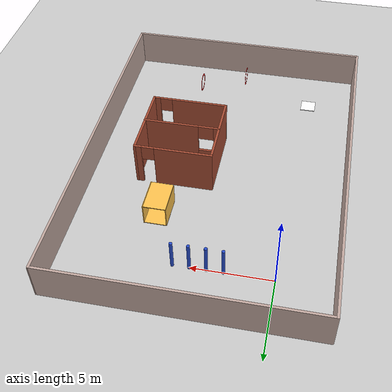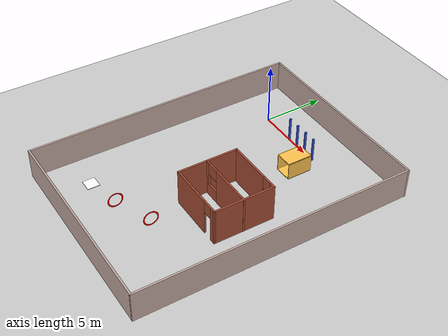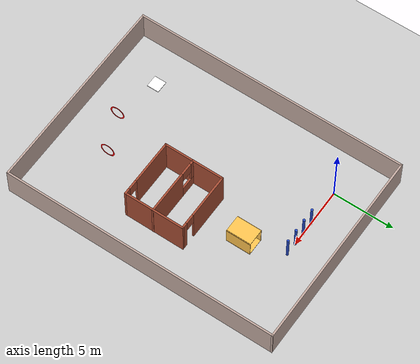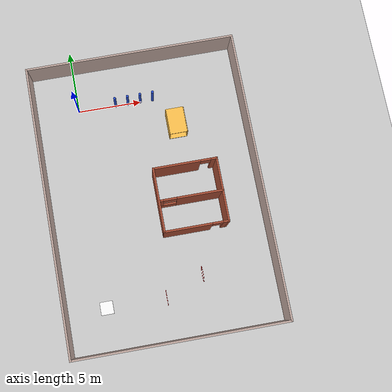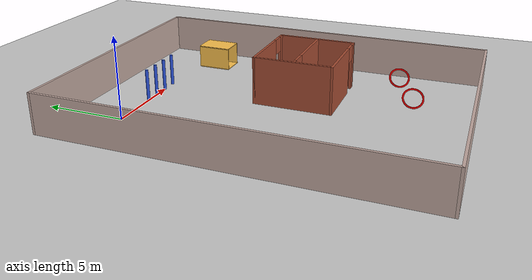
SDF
<sdf version="1.7">
 <world name="default">
  <light name="sun" type="directional">
   <pose>0 0 10 0 -0 0</pose>
   <diffuse>0.8 0.8 0.8 1</diffuse>
   <specular>0.2 0.2 0.2 1</specular>
   <attenuation>
    <range>1000</range>
    <constant>0.9</constant>
    <linear>0.01</linear>
    <quadratic>0.001</quadratic>
   </attenuation>
   <direction>-0.5 0.1 -0.9</direction>
   <spot><inner_angle>0</inner_angle><outer_angle>0</outer_angle><falloff>0</falloff></spot>
  </light>
  <model name="ground_plane">
   <static>1</static>
   <link name="link">
    <collision name="collision">
     <geometry><plane><normal>0 0 1</normal><size>100 100</size></plane></geometry>
     <surface>
      <contact><collide_bitmask>65535</collide_bitmask></contact>
      <friction><ode><mu>100</mu><mu2>50</mu2></ode></friction>
     </surface>
    </collision>
    <visual name="visual">
     <cast_shadows>0</cast_shadows>
     <geometry><plane><normal>0 0 1</normal><size>100 100</size></plane></geometry>
     <material>
      <script><uri>file://media/materials/scripts/gazebo.material</uri><name>Gazebo/Grey</name></script>
     </material>
    </visual>
   </link>
  </model>
  <model name="asphalt_plane">
   <pose>2.32989 -0.241228 -4.56907 0 -0 0</pose>
   <static>1</static>
   <link name="link">
    <collision name="collision"><geometry><box><size>200 200 0.1</size></box></geometry></collision>
    <visual name="visual">
     <cast_shadows>0</cast_shadows>
     <geometry><box><size>200 200 0.1</size></box></geometry>
     <material>
      <script>
       <uri>model://asphalt_plane/materials/scripts</uri>
       <uri>model://asphalt_plane/materials/textures</uri>
       <name>vrc/asphalt</name>
      </script>
     </material>
    </visual>
   </link>
  </model>
  <physics name="default_physics" default="0" type="ode">
   <ode>
    <solver>
     <type>quick</type>
     <iters>10</iters>
     <sor>1.3</sor>
     <use_dynamic_moi_rescaling>0</use_dynamic_moi_rescaling>
    </solver>
    <constraints>
     <cfm>0</cfm>
     <erp>0.2</erp>
     <contact_max_correcting_vel>100</contact_max_correcting_vel>
     <contact_surface_layer>0.001</contact_surface_layer>
    </constraints>
   </ode>
   <max_step_size>0.004</max_step_size>
   <real_time_factor>1</real_time_factor>
   <real_time_update_rate>250</real_time_update_rate>
  </physics>
  <gravity>0 0 -9.8066</gravity>
  <magnetic_field>6e-06 2.3e-05 -4.2e-05</magnetic_field>
  <atmosphere type="adiabatic"/>
  <scene><ambient>0.4 0.4 0.4 1</ambient><background>0.7 0.7 0.7 1</background><shadows>1</shadows></scene>
  <spherical_coordinates>
   <surface_model>EARTH_WGS84</surface_model>
   <latitude_deg>0</latitude_deg>
   <longitude_deg>0</longitude_deg>
   <elevation>0</elevation>
   <heading_deg>0</heading_deg>
  </spherical_coordinates>
  <model name="labyrinth">
   <pose>8.01567 -8.71442 0 0 0 -1.57071</pose>
   <link name="Wall_11">
    <pose>0.075 -0.6275 0 0 -0 -1.5708</pose>
    <visual name="Wall_11_Visual_0">
     <pose>-0.7025 0 1.5 0 -0 0</pose>
     <geometry><box><size>3.595 0.15 3</size></box></geometry>
     <material>
      <script><uri>file://media/materials/scripts/gazebo.material</uri><name>Gazebo/Bricks</name></script>
      <ambient>1 1 1 1</ambient>
     </material>
     <meta><layer>0</layer></meta>
    </visual>
    <collision name="Wall_11_Collision_0">
     <geometry><box><size>3.595 0.15 3</size></box></geometry>
     <pose>-0.7025 0 1.5 0 -0 0</pose>
    </collision>
    <visual name="Wall_11_Visual_1">
     <pose>1.7975 0 0.5 0 -0 0</pose>
     <geometry><box><size>1.405 0.15 1</size></box></geometry>
     <material>
      <script><uri>file://media/materials/scripts/gazebo.material</uri><name>Gazebo/Bricks</name></script>
      <ambient>1 1 1 1</ambient>
     </material>
     <meta><layer>0</layer></meta>
    </visual>
    <collision name="Wall_11_Collision_1">
     <geometry><box><size>1.405 0.15 1</size></box></geometry>
     <pose>1.7975 0 0.5 0 -0 0</pose>
    </collision>
    <visual name="Wall_11_Visual_2">
     <pose>2.2975 0 2 0 -0 0</pose>
     <geometry><box><size>0.405 0.15 2</size></box></geometry>
     <material>
      <script><uri>file://media/materials/scripts/gazebo.material</uri><name>Gazebo/Bricks</name></script>
      <ambient>1 1 1 1</ambient>
     </material>
     <meta><layer>0</layer></meta>
    </visual>
    <collision name="Wall_11_Collision_2">
     <geometry><box><size>0.405 0.15 2</size></box></geometry>
     <pose>2.2975 0 2 0 -0 0</pose>
    </collision>
    <visual name="Wall_11_Visual_3">
     <pose>1.595 0 2.5 0 -0 0</pose>
     <geometry><box><size>1 0.15 1</size></box></geometry>
     <material>
      <script><uri>file://media/materials/scripts/gazebo.material</uri><name>Gazebo/Bricks</name></script>
      <ambient>1 1 1 1</ambient>
     </material>
     <meta><layer>0</layer></meta>
    </visual>
    <collision name="Wall_11_Collision_3">
     <geometry><box><size>1 0.15 1</size></box></geometry>
     <pose>1.595 0 2.5 0 -0 0</pose>
    </collision>
   </link>
   <link name="Wall_6">
    <pose>-2.425 -0.6475 0 0 -0 -1.5708</pose>
    <visual name="Wall_6_Visual_0">
     <pose>-2.2475 0 1.5 0 -0 0</pose>
     <geometry><box><size>0.505 0.15 3</size></box></geometry>
     <material>
      <script><uri>file://media/materials/scripts/gazebo.material</uri><name>Gazebo/Bricks</name></script>
      <ambient>1 1 1 1</ambient>
     </material>
     <meta><layer>0</layer></meta>
    </visual>
    <collision name="Wall_6_Collision_0">
     <geometry><box><size>0.505 0.15 3</size></box></geometry>
     <pose>-2.2475 0 1.5 0 -0 0</pose>
    </collision>
    <visual name="Wall_6_Visual_1">
     <pose>0.6525 0 1.5 0 -0 0</pose>
     <geometry><box><size>3.695 0.15 3</size></box></geometry>
     <material>
      <script><uri>file://media/materials/scripts/gazebo.material</uri><name>Gazebo/Bricks</name></script>
      <ambient>1 1 1 1</ambient>
     </material>
     <meta><layer>0</layer></meta>
    </visual>
    <collision name="Wall_6_Collision_1">
     <geometry><box><size>3.695 0.15 3</size></box></geometry>
     <pose>0.6525 0 1.5 0 -0 0</pose>
    </collision>
    <visual name="Wall_6_Visual_2">
     <pose>-1.595 0 2.5 0 -0 0</pose>
     <geometry><box><size>0.8 0.15 1</size></box></geometry>
     <material>
      <script><uri>file://media/materials/scripts/gazebo.material</uri><name>Gazebo/Bricks</name></script>
      <ambient>1 1 1 1</ambient>
     </material>
     <meta><layer>0</layer></meta>
    </visual>
    <collision name="Wall_6_Collision_2">
     <geometry><box><size>0.8 0.15 1</size></box></geometry>
     <pose>-1.595 0 2.5 0 -0 0</pose>
    </collision>
   </link>
   <link name="Wall_7">
    <collision name="Wall_7_Collision">
     <geometry><box><size>5 0.15 3</size></box></geometry>
     <pose>0 0 1.5 0 -0 0</pose>
    </collision>
    <visual name="Wall_7_Visual">
     <pose>0 0 1.5 0 -0 0</pose>
     <geometry><box><size>5 0.15 3</size></box></geometry>
     <material>
      <script><uri>file://media/materials/scripts/gazebo.material</uri><name>Gazebo/Bricks</name></script>
      <ambient>1 1 1 1</ambient>
     </material>
     <meta><layer>0</layer></meta>
    </visual>
    <pose>-0 -3.0725 0 0 -0 0</pose>
   </link>
   <link name="Wall_8">
    <pose>2.425 -0.6475 0 0 -0 1.5708</pose>
    <visual name="Wall_8_Visual_0">
     <pose>-0.6525 0 1.5 0 -0 0</pose>
     <geometry><box><size>3.695 0.15 3</size></box></geometry>
     <material>
      <script><uri>file://media/materials/scripts/gazebo.material</uri><name>Gazebo/Bricks</name></script>
      <ambient>1 1 1 1</ambient>
     </material>
     <meta><layer>0</layer></meta>
    </visual>
    <collision name="Wall_8_Collision_0">
     <geometry><box><size>3.695 0.15 3</size></box></geometry>
     <pose>-0.6525 0 1.5 0 -0 0</pose>
    </collision>
    <visual name="Wall_8_Visual_1">
     <pose>2.2475 0 1.5 0 -0 0</pose>
     <geometry><box><size>0.505 0.15 3</size></box></geometry>
     <material>
      <script><uri>file://media/materials/scripts/gazebo.material</uri><name>Gazebo/Bricks</name></script>
      <ambient>1 1 1 1</ambient>
     </material>
     <meta><layer>0</layer></meta>
    </visual>
    <collision name="Wall_8_Collision_1">
     <geometry><box><size>0.505 0.15 3</size></box></geometry>
     <pose>2.2475 0 1.5 0 -0 0</pose>
    </collision>
    <visual name="Wall_8_Visual_2">
     <pose>1.595 0 2.5 0 -0 0</pose>
     <geometry><box><size>0.8 0.15 1</size></box></geometry>
     <material>
      <script><uri>file://media/materials/scripts/gazebo.material</uri><name>Gazebo/Bricks</name></script>
      <ambient>1 1 1 1</ambient>
     </material>
     <meta><layer>0</layer></meta>
    </visual>
    <collision name="Wall_8_Collision_2">
     <geometry><box><size>0.8 0.15 1</size></box></geometry>
     <pose>1.595 0 2.5 0 -0 0</pose>
    </collision>
   </link>
   <link name="Wall_9">
    <collision name="Wall_9_Collision">
     <geometry><box><size>5 0.15 3</size></box></geometry>
     <pose>0 0 1.5 0 -0 0</pose>
    </collision>
    <visual name="Wall_9_Visual">
     <pose>0 0 1.5 0 -0 0</pose>
     <geometry><box><size>5 0.15 3</size></box></geometry>
     <material>
      <script><uri>file://media/materials/scripts/gazebo.material</uri><name>Gazebo/Bricks</name></script>
      <ambient>1 1 1 1</ambient>
     </material>
     <meta><layer>0</layer></meta>
    </visual>
    <pose>-0 1.7775 0 0 -0 3.14159</pose>
   </link>
   <static>1</static>
  </model>
  <model name="corridor">
   <pose>7.39968 -1.78586 0.999997 -1.56998 -1.56359 3.14155</pose>
   <link name="Wall_11">
    <collision name="Wall_11_Collision">
     <geometry><box><size>1.39701 0.05 2</size></box></geometry>
     <pose>0 0 1 0 -0 0</pose>
    </collision>
    <visual name="Wall_11_Visual">
     <pose>0 0 1 0 -0 0</pose>
     <geometry><box><size>1.39701 0.05 2</size></box></geometry>
     <material>
      <script><uri>file://media/materials/scripts/gazebo.material</uri><name>Gazebo/Grey</name></script>
      <ambient>1 0.764706 0.305882 1</ambient>
     </material>
     <meta><layer>0</layer></meta>
    </visual>
    <pose>0.951435 0.674994 0 0 -0 -0.004454</pose>
   </link>
   <link name="Wall_12">
    <collision name="Wall_12_Collision">
     <geometry><box><size>1.40025 0.05 2</size></box></geometry>
     <pose>0 0 1 0 -0 0</pose>
    </collision>
    <visual name="Wall_12_Visual">
     <pose>0 0 1 0 -0 0</pose>
     <geometry><box><size>1.40025 0.05 2</size></box></geometry>
     <material>
      <script><uri>file://media/materials/scripts/gazebo.material</uri><name>Gazebo/Grey</name></script>
      <ambient>1 0.764706 0.305882 1</ambient>
     </material>
     <meta><layer>0</layer></meta>
    </visual>
    <pose>1.62494 -0.003006 0 0 -0 -1.5708</pose>
   </link>
   <link name="Wall_13">
    <collision name="Wall_13_Collision">
     <geometry><box><size>1.39702 0.05 2</size></box></geometry>
     <pose>0 0 1 0 -0 0</pose>
    </collision>
    <visual name="Wall_13_Visual">
     <pose>0 0 1 0 -0 0</pose>
     <geometry><box><size>1.39702 0.05 2</size></box></geometry>
     <material>
      <script><uri>file://media/materials/scripts/gazebo.material</uri><name>Gazebo/Grey</name></script>
      <ambient>1 0.764706 0.305882 1</ambient>
     </material>
     <meta><layer>0</layer></meta>
    </visual>
    <pose>0.951435 -0.674506 0 0 -0 3.1364</pose>
   </link>
   <link name="Wall_14">
    <collision name="Wall_14_Collision">
     <geometry><box><size>1.39928 0.05 2</size></box></geometry>
     <pose>0 0 1 0 -0 0</pose>
    </collision>
    <visual name="Wall_14_Visual">
     <pose>0 0 1 0 -0 0</pose>
     <geometry><box><size>1.39928 0.05 2</size></box></geometry>
     <material>
      <script><uri>file://media/materials/scripts/gazebo.material</uri><name>Gazebo/Grey</name></script>
      <ambient>1 0.764706 0.305882 1</ambient>
     </material>
     <meta><layer>0</layer></meta>
    </visual>
    <pose>0.277935 0.003494 0 0 -0 1.5708</pose>
   </link>
   <static>1</static>
  </model>
  <model name="hooop_0">
   <link name="link_2">
    <inertial>
     <mass>1</mass>
     <inertia>
      <ixx>0.166667</ixx>
      <ixy>0</ixy>
      <ixz>0</ixz>
      <iyy>0.166667</iyy>
      <iyz>0</iyz>
      <izz>0.166667</izz>
     </inertia>
    </inertial>
    <pose>-2.3e-05 0.000436 -0 0 -0 0</pose>
    <gravity>0</gravity>
    <visual name="visual">
     <geometry>
      <mesh>
       <uri>/home/host/ius_uav/ros_ws/src/px4_sim/models/hooop_0/hoop.dae</uri>
       <scale>0.001 0.001 0.001</scale>
      </mesh>
     </geometry>
     <material>
      <lighting>1</lighting>
      <script><uri>file://media/materials/scripts/gazebo.material</uri><name>Gazebo/Grey</name></script>
      <shader type="pixel"><normal_map>__default__</normal_map></shader>
      <ambient>1 0 0 0</ambient>
      <diffuse>0.7 0.7 0.7 1</diffuse>
      <specular>0.01 0.01 0.01 1</specular>
      <emissive>0 0 0 1</emissive>
     </material>
    </visual>
    <collision name="collision">
     <geometry>
      <mesh>
       <uri>/home/host/ius_uav/ros_ws/src/px4_sim/models/hooop_0/hoop.dae</uri>
       <scale>0.001 0.001 0.001</scale>
      </mesh>
     </geometry>
     <surface>
      <friction>
       <ode><mu>1</mu><mu2>1</mu2><fdir1>0 0 0</fdir1><slip1>0</slip1><slip2>0</slip2></ode>
       <torsional>
        <coefficient>1</coefficient>
        <patch_radius>0</patch_radius>
        <surface_radius>0</surface_radius>
        <use_patch_radius>1</use_patch_radius>
        <ode><slip>0</slip></ode>
       </torsional>
      </friction>
      <bounce><restitution_coefficient>0</restitution_coefficient><threshold>1e+06</threshold></bounce>
      <contact>
       <collide_without_contact>0</collide_without_contact>
       <collide_without_contact_bitmask>1</collide_without_contact_bitmask>
       <collide_bitmask>1</collide_bitmask>
       <ode>
        <soft_cfm>0</soft_cfm>
        <soft_erp>0.2</soft_erp>
        <kp>1e+13</kp>
        <kd>1</kd>
        <max_vel>0.01</max_vel>
        <min_depth>0</min_depth>
       </ode>
       <bullet>
        <split_impulse>1</split_impulse>
        <split_impulse_penetration_threshold>-0.01</split_impulse_penetration_threshold>
        <soft_cfm>0</soft_cfm>
        <soft_erp>0.2</soft_erp>
        <kp>1e+13</kp>
        <kd>1</kd>
       </bullet>
      </contact>
     </surface>
    </collision>
   </link>
   <static>0</static>
   <plugin name="move_obj" filename="libmove_obj_plugin.so"/>
   <pose>4.27961 -15.876 2.02513 0 1.57 0</pose>
  </model>
  <model name="pillar_0">
   <link name="link_0">
    <inertial>
     <mass>1</mass>
     <inertia><ixx>0.145833</ixx><ixy>0</ixy><ixz>0</ixz><iyy>0.145833</iyy><iyz>0</iyz><izz>0.125</izz></inertia>
    </inertial>
    <visual name="visual">
     <geometry><cylinder><radius>0.1</radius><length>2</length></cylinder></geometry>
     <material>
      <lighting>1</lighting>
      <script><uri>file://media/materials/scripts/gazebo.material</uri><name>Gazebo/Blue</name></script>
      <shader type="pixel"><normal_map>__default__</normal_map></shader>
      <ambient>0 0.3 1 1</ambient>
      <diffuse>0.7 0.7 0.7 1</diffuse>
      <specular>0.01 0.01 0.01 1</specular>
      <emissive>0 0 0 1</emissive>
     </material>
    </visual>
    <collision name="collision">
     <geometry><cylinder><radius>0.1</radius><length>2</length></cylinder></geometry>
     <surface>
      <friction>
       <ode><mu>1</mu><mu2>1</mu2><fdir1>0 0 0</fdir1><slip1>0</slip1><slip2>0</slip2></ode>
       <torsional>
        <coefficient>1</coefficient>
        <patch_radius>0</patch_radius>
        <surface_radius>0</surface_radius>
        <use_patch_radius>1</use_patch_radius>
        <ode><slip>0</slip></ode>
       </torsional>
      </friction>
      <bounce><restitution_coefficient>0</restitution_coefficient><threshold>1e+06</threshold></bounce>
      <contact>
       <collide_without_contact>0</collide_without_contact>
       <collide_without_contact_bitmask>1</collide_without_contact_bitmask>
       <collide_bitmask>1</collide_bitmask>
       <ode>
        <soft_cfm>0</soft_cfm>
        <soft_erp>0.2</soft_erp>
        <kp>1e+13</kp>
        <kd>1</kd>
        <max_vel>0.01</max_vel>
        <min_depth>0</min_depth>
       </ode>
       <bullet>
        <split_impulse>1</split_impulse>
        <split_impulse_penetration_threshold>-0.01</split_impulse_penetration_threshold>
        <soft_cfm>0</soft_cfm>
        <soft_erp>0.2</soft_erp>
        <kp>1e+13</kp>
        <kd>1</kd>
       </bullet>
      </contact>
     </surface>
    </collision>
   </link>
   <static>1</static>
   <pose>4 0 1 0 -0 0</pose>
  </model>
  <model name="pillar_1">
   <link name="link_0">
    <inertial>
     <mass>1</mass>
     <inertia><ixx>0.145833</ixx><ixy>0</ixy><ixz>0</ixz><iyy>0.145833</iyy><iyz>0</iyz><izz>0.125</izz></inertia>
    </inertial>
    <visual name="visual">
     <geometry><cylinder><radius>0.1</radius><length>2</length></cylinder></geometry>
     <material>
      <lighting>1</lighting>
      <script><uri>file://media/materials/scripts/gazebo.material</uri><name>Gazebo/Blue</name></script>
      <shader type="pixel"><normal_map>__default__</normal_map></shader>
      <ambient>0 0.3 1 1</ambient>
      <diffuse>0.7 0.7 0.7 1</diffuse>
      <specular>0.01 0.01 0.01 1</specular>
      <emissive>0 0 0 1</emissive>
     </material>
    </visual>
    <collision name="collision">
     <geometry><cylinder><radius>0.1</radius><length>2</length></cylinder></geometry>
     <surface>
      <friction>
       <ode><mu>1</mu><mu2>1</mu2><fdir1>0 0 0</fdir1><slip1>0</slip1><slip2>0</slip2></ode>
       <torsional>
        <coefficient>1</coefficient>
        <patch_radius>0</patch_radius>
        <surface_radius>0</surface_radius>
        <use_patch_radius>1</use_patch_radius>
        <ode><slip>0</slip></ode>
       </torsional>
      </friction>
      <bounce><restitution_coefficient>0</restitution_coefficient><threshold>1e+06</threshold></bounce>
      <contact>
       <collide_without_contact>0</collide_without_contact>
       <collide_without_contact_bitmask>1</collide_without_contact_bitmask>
       <collide_bitmask>1</collide_bitmask>
       <ode>
        <soft_cfm>0</soft_cfm>
        <soft_erp>0.2</soft_erp>
        <kp>1e+13</kp>
        <kd>1</kd>
        <max_vel>0.01</max_vel>
        <min_depth>0</min_depth>
       </ode>
       <bullet>
        <split_impulse>1</split_impulse>
        <split_impulse_penetration_threshold>-0.01</split_impulse_penetration_threshold>
        <soft_cfm>0</soft_cfm>
        <soft_erp>0.2</soft_erp>
        <kp>1e+13</kp>
        <kd>1</kd>
       </bullet>
      </contact>
     </surface>
    </collision>
   </link>
   <static>1</static>
   <pose>5 0 1 0 -0 0</pose>
  </model>
  <model name="pillar_2">
   <link name="link_0">
    <inertial>
     <mass>1</mass>
     <inertia><ixx>0.145833</ixx><ixy>0</ixy><ixz>0</ixz><iyy>0.145833</iyy><iyz>0</iyz><izz>0.125</izz></inertia>
    </inertial>
    <visual name="visual">
     <geometry><cylinder><radius>0.1</radius><length>2</length></cylinder></geometry>
     <material>
      <lighting>1</lighting>
      <script><uri>file://media/materials/scripts/gazebo.material</uri><name>Gazebo/Blue</name></script>
      <shader type="pixel"><normal_map>__default__</normal_map></shader>
      <ambient>0 0.3 1 1</ambient>
      <diffuse>0.7 0.7 0.7 1</diffuse>
      <specular>0.01 0.01 0.01 1</specular>
      <emissive>0 0 0 1</emissive>
     </material>
    </visual>
    <collision name="collision">
     <geometry><cylinder><radius>0.1</radius><length>2</length></cylinder></geometry>
     <surface>
      <friction>
       <ode><mu>1</mu><mu2>1</mu2><fdir1>0 0 0</fdir1><slip1>0</slip1><slip2>0</slip2></ode>
       <torsional>
        <coefficient>1</coefficient>
        <patch_radius>0</patch_radius>
        <surface_radius>0</surface_radius>
        <use_patch_radius>1</use_patch_radius>
        <ode><slip>0</slip></ode>
       </torsional>
      </friction>
      <bounce><restitution_coefficient>0</restitution_coefficient><threshold>1e+06</threshold></bounce>
      <contact>
       <collide_without_contact>0</collide_without_contact>
       <collide_without_contact_bitmask>1</collide_without_contact_bitmask>
       <collide_bitmask>1</collide_bitmask>
       <ode>
        <soft_cfm>0</soft_cfm>
        <soft_erp>0.2</soft_erp>
        <kp>1e+13</kp>
        <kd>1</kd>
        <max_vel>0.01</max_vel>
        <min_depth>0</min_depth>
       </ode>
       <bullet>
        <split_impulse>1</split_impulse>
        <split_impulse_penetration_threshold>-0.01</split_impulse_penetration_threshold>
        <soft_cfm>0</soft_cfm>
        <soft_erp>0.2</soft_erp>
        <kp>1e+13</kp>
        <kd>1</kd>
       </bullet>
      </contact>
     </surface>
    </collision>
   </link>
   <static>1</static>
   <pose>6 0 1 0 -0 0</pose>
  </model>
  <model name="pillar">
   <link name="link_0">
    <inertial>
     <mass>1</mass>
     <inertia><ixx>0.145833</ixx><ixy>0</ixy><ixz>0</ixz><iyy>0.145833</iyy><iyz>0</iyz><izz>0.125</izz></inertia>
    </inertial>
    <visual name="visual">
     <geometry><cylinder><radius>0.1</radius><length>2</length></cylinder></geometry>
     <material>
      <lighting>1</lighting>
      <script><uri>file://media/materials/scripts/gazebo.material</uri><name>Gazebo/Blue</name></script>
      <shader type="pixel"><normal_map>__default__</normal_map></shader>
      <ambient>0 0.3 1 1</ambient>
      <diffuse>0.7 0.7 0.7 1</diffuse>
      <specular>0.01 0.01 0.01 1</specular>
      <emissive>0 0 0 1</emissive>
     </material>
    </visual>
    <collision name="collision">
     <geometry><cylinder><radius>0.1</radius><length>2</length></cylinder></geometry>
     <surface>
      <friction>
       <ode><mu>1</mu><mu2>1</mu2><fdir1>0 0 0</fdir1><slip1>0</slip1><slip2>0</slip2></ode>
       <torsional>
        <coefficient>1</coefficient>
        <patch_radius>0</patch_radius>
        <surface_radius>0</surface_radius>
        <use_patch_radius>1</use_patch_radius>
        <ode><slip>0</slip></ode>
       </torsional>
      </friction>
      <bounce><restitution_coefficient>0</restitution_coefficient><threshold>1e+06</threshold></bounce>
      <contact>
       <collide_without_contact>0</collide_without_contact>
       <collide_without_contact_bitmask>1</collide_without_contact_bitmask>
       <collide_bitmask>1</collide_bitmask>
       <ode>
        <soft_cfm>0</soft_cfm>
        <soft_erp>0.2</soft_erp>
        <kp>1e+13</kp>
        <kd>1</kd>
        <max_vel>0.01</max_vel>
        <min_depth>0</min_depth>
       </ode>
       <bullet>
        <split_impulse>1</split_impulse>
        <split_impulse_penetration_threshold>-0.01</split_impulse_penetration_threshold>
        <soft_cfm>0</soft_cfm>
        <soft_erp>0.2</soft_erp>
        <kp>1e+13</kp>
        <kd>1</kd>
       </bullet>
      </contact>
     </surface>
    </collision>
   </link>
   <static>1</static>
   <pose>3 0 1 0 -0 0</pose>
  </model>
  <model name="hooop_s">
   <link name="link_2">
    <inertial>
     <mass>1</mass>
     <inertia>
      <ixx>0.166667</ixx>
      <ixy>0</ixy>
      <ixz>0</ixz>
      <iyy>0.166667</iyy>
      <iyz>0</iyz>
      <izz>0.166667</izz>
     </inertia>
    </inertial>
    <pose>-2.3e-05 0.000436 -0 0 -0 0</pose>
    <gravity>0</gravity>
    <visual name="visual">
     <geometry>
      <mesh>
       <uri>/home/host/ius_uav/ros_ws/src/px4_sim/models/hooop_s/hoop.dae</uri>
       <scale>0.001 0.001 0.001</scale>
      </mesh>
     </geometry>
     <material>
      <lighting>1</lighting>
      <script><uri>file://media/materials/scripts/gazebo.material</uri><name>Gazebo/Grey</name></script>
      <shader type="pixel"><normal_map>__default__</normal_map></shader>
      <ambient>1 0 0 0</ambient>
      <diffuse>0.7 0.7 0.7 1</diffuse>
      <specular>0.01 0.01 0.01 1</specular>
      <emissive>0 0 0 1</emissive>
     </material>
    </visual>
    <collision name="collision">
     <geometry>
      <mesh>
       <uri>/home/host/ius_uav/ros_ws/src/px4_sim/models/hooop_s/hoop.dae</uri>
       <scale>0.001 0.001 0.001</scale>
      </mesh>
     </geometry>
     <surface>
      <friction>
       <ode><mu>1</mu><mu2>1</mu2><fdir1>0 0 0</fdir1><slip1>0</slip1><slip2>0</slip2></ode>
       <torsional>
        <coefficient>1</coefficient>
        <patch_radius>0</patch_radius>
        <surface_radius>0</surface_radius>
        <use_patch_radius>1</use_patch_radius>
        <ode><slip>0</slip></ode>
       </torsional>
      </friction>
      <bounce><restitution_coefficient>0</restitution_coefficient><threshold>1e+06</threshold></bounce>
      <contact>
       <collide_without_contact>0</collide_without_contact>
       <collide_without_contact_bitmask>1</collide_without_contact_bitmask>
       <collide_bitmask>1</collide_bitmask>
       <ode>
        <soft_cfm>0</soft_cfm>
        <soft_erp>0.2</soft_erp>
        <kp>1e+13</kp>
        <kd>1</kd>
        <max_vel>0.01</max_vel>
        <min_depth>0</min_depth>
       </ode>
       <bullet>
        <split_impulse>1</split_impulse>
        <split_impulse_penetration_threshold>-0.01</split_impulse_penetration_threshold>
        <soft_cfm>0</soft_cfm>
        <soft_erp>0.2</soft_erp>
        <kp>1e+13</kp>
        <kd>1</kd>
       </bullet>
      </contact>
     </surface>
    </collision>
   </link>
   <static>1</static>
   <pose>7.20694 -14.6223 2.00398 0 -1.56729 0</pose>
  </model>
  <model name="wall">
   <pose>4.7673 -7.90254 0 0 -0 0</pose>
   <link name="Wall_3">
    <collision name="Wall_3_Collision">
     <geometry><box><size>22.5828 0.15 2.5</size></box></geometry>
     <pose>0 0 1.25 0 -0 0</pose>
    </collision>
    <visual name="Wall_3_Visual">
     <pose>0 0 1.25 0 -0 0</pose>
     <geometry><box><size>22.5828 0.15 2.5</size></box></geometry>
     <material>
      <script><uri>file://media/materials/scripts/gazebo.material</uri><name>Gazebo/Grey</name></script>
      <ambient>0.760784 0.662745 0.627451 1</ambient>
     </material>
     <meta><layer>0</layer></meta>
    </visual>
    <pose>-8.1733 3.8e-05 0 0 -0 -1.5708</pose>
   </link>
   <link name="Wall_4">
    <collision name="Wall_4_Collision">
     <geometry><box><size>16.4565 0.15 2.5</size></box></geometry>
     <pose>0 0 1.25 0 -0 0</pose>
    </collision>
    <visual name="Wall_4_Visual">
     <pose>0 0 1.25 0 -0 0</pose>
     <geometry><box><size>16.4565 0.15 2.5</size></box></geometry>
     <material>
      <script><uri>file://media/materials/scripts/gazebo.material</uri><name>Gazebo/Grey</name></script>
      <ambient>0.760784 0.662745 0.627451 1</ambient>
     </material>
     <meta><layer>0</layer></meta>
    </visual>
    <pose>-0.020209 -11.2164 0 0 -0 4e-06</pose>
   </link>
   <link name="Wall_5">
    <collision name="Wall_5_Collision">
     <geometry><box><size>22.5828 0.15 2.5</size></box></geometry>
     <pose>0 0 1.25 0 -0 0</pose>
    </collision>
    <visual name="Wall_5_Visual">
     <pose>0 0 1.25 0 -0 0</pose>
     <geometry><box><size>22.5828 0.15 2.5</size></box></geometry>
     <material>
      <script><uri>file://media/materials/scripts/gazebo.material</uri><name>Gazebo/Grey</name></script>
      <ambient>0.760784 0.662745 0.627451 1</ambient>
     </material>
     <meta><layer>0</layer></meta>
    </visual>
    <pose>8.15311 -9e-06 0 0 -0 1.5726</pose>
   </link>
   <link name="Wall_6">
    <collision name="Wall_6_Collision">
     <geometry><box><size>16.4565 0.15 2.5</size></box></geometry>
     <pose>0 0 1.25 0 -0 0</pose>
    </collision>
    <visual name="Wall_6_Visual">
     <pose>0 0 1.25 0 -0 0</pose>
     <geometry><box><size>16.4565 0.15 2.5</size></box></geometry>
     <material>
      <script><uri>file://media/materials/scripts/gazebo.material</uri><name>Gazebo/Grey</name></script>
      <ambient>0.760784 0.662745 0.627451 1</ambient>
     </material>
     <meta><layer>0</layer></meta>
    </visual>
    <pose>-0.020209 11.2165 0 0 -0 3.14158</pose>
   </link>
   <static>1</static>
  </model>
  <plugin name="ignition::gazebo::systems::Sensors" filename="libignition-gazebo-sensors-system.so">
   <render_engine>ogre2</render_engine>
  </plugin>
  <model name="moving_platform">
   <link name="link_1">
    <inertial>
     <mass>1</mass>
     <inertia>
      <ixx>0.166667</ixx>
      <ixy>0</ixy>
      <ixz>0</ixz>
      <iyy>0.166667</iyy>
      <iyz>0</iyz>
      <izz>0.166667</izz>
     </inertia>
    </inertial>
    <gravity>0</gravity>
    <visual name="visual">
     <geometry><box><size>1 1 0.05</size></box></geometry>
     <material>
      <lighting>1</lighting>
      <script>
       <uri>model://moving_platform/materials/scripts</uri>
       <uri>model://moving_platform/materials/textures</uri>
       <name>Tag/tag</name>
      </script>
      <shader type="pixel"><normal_map>__default__</normal_map></shader>
      <ambient>1 1 1 1</ambient>
      <diffuse>1 1 1 1</diffuse>
      <specular>0.01 0.01 0.01 1</specular>
      <emissive>0 0 0 1</emissive>
     </material>
    </visual>
    <collision name="collision">
     <geometry><box><size>1 1 0.05</size></box></geometry>
     <surface>
      <friction>
       <ode><mu>1</mu><mu2>1</mu2><fdir1>0 0 0</fdir1><slip1>0</slip1><slip2>0</slip2></ode>
       <torsional>
        <coefficient>1</coefficient>
        <patch_radius>0</patch_radius>
        <surface_radius>0</surface_radius>
        <use_patch_radius>1</use_patch_radius>
        <ode><slip>0</slip></ode>
       </torsional>
      </friction>
      <bounce><restitution_coefficient>0</restitution_coefficient><threshold>1e+06</threshold></bounce>
      <contact>
       <collide_without_contact>0</collide_without_contact>
       <collide_without_contact_bitmask>1</collide_without_contact_bitmask>
       <collide_bitmask>1</collide_bitmask>
       <ode>
        <soft_cfm>0</soft_cfm>
        <soft_erp>0.2</soft_erp>
        <kp>1e+13</kp>
        <kd>1</kd>
        <max_vel>0.01</max_vel>
        <min_depth>0</min_depth>
       </ode>
       <bullet>
        <split_impulse>1</split_impulse>
        <split_impulse_penetration_threshold>-0.01</split_impulse_penetration_threshold>
        <soft_cfm>0</soft_cfm>
        <soft_erp>0.2</soft_erp>
        <kp>1e+13</kp>
        <kd>1</kd>
       </bullet>
      </contact>
     </surface>
    </collision>
   </link>
   <static>0</static>
   <plugin name="move_obj" filename="libmove_obj_plugin.so"/>
   <pose>-0.349465 -15.7786 0.025 0 -0 0</pose>
  </model>
 </world>
</sdf>
